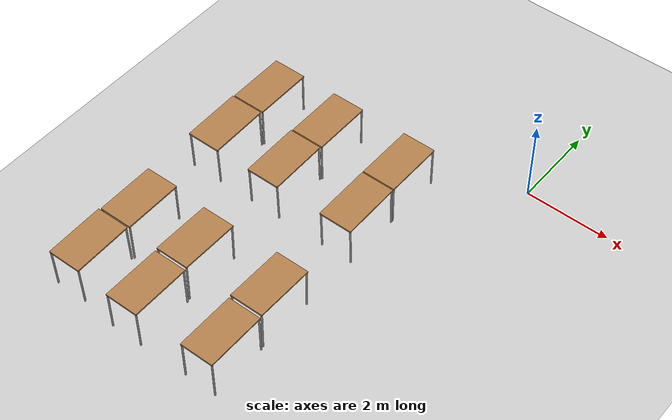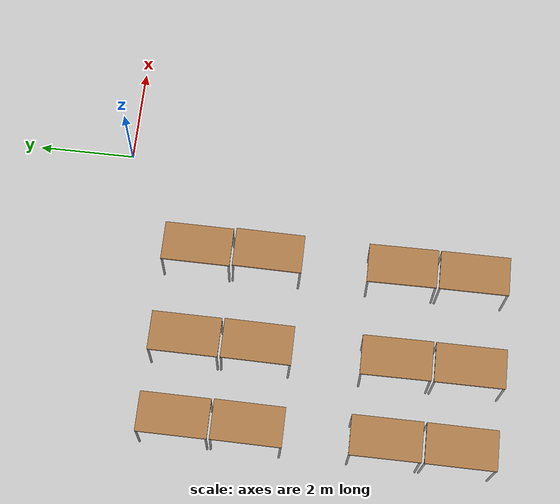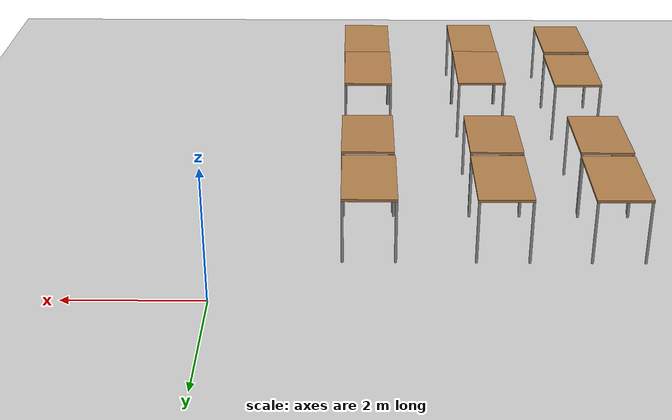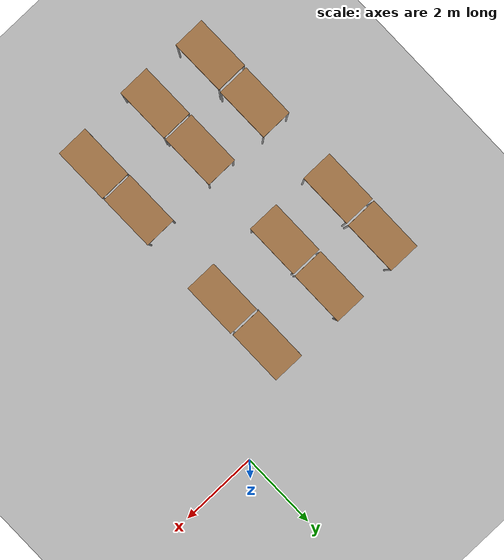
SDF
<sdf version="1.6">
 <world name="default">
  <model name="ground_plane">
   <static>1</static>
   <link name="link">
    <collision name="collision">
     <geometry><plane><normal>0 0 1</normal><size>100 100</size></plane></geometry>
     <surface><friction><ode><mu>100</mu><mu2>50</mu2></ode></friction></surface>
    </collision>
    <visual name="visual">
     <cast_shadows>0</cast_shadows>
     <geometry><plane><normal>0 0 1</normal><size>100 100</size></plane></geometry>
     <material>
      <script><uri>file://media/materials/scripts/gazebo.material</uri><name>Gazebo/Grey</name></script>
     </material>
    </visual>
   </link>
  </model>
  <model name="table_1">
   <static>0</static>
   <link name="link">
    <collision name="surface">
     <pose>0 0 1 0 -0 0</pose>
     <geometry><box><size>1.5 0.8 0.03</size></box></geometry>
     <surface><friction><ode><mu>0.6</mu><mu2>0.6</mu2></ode></friction></surface>
    </collision>
    <visual name="visual1">
     <pose>0 0 1 0 -0 0</pose>
     <geometry><box><size>1.4 0.8 0.04</size></box></geometry>
     <material>
      <script><uri>file://media/materials/scripts/gazebo.material</uri><name>Gazebo/Wood</name></script>
     </material>
    </visual>
    <collision name="front_left_leg">
     <pose>0.68 0.38 0.5 0 -0 0</pose>
     <geometry><cylinder><radius>0.02</radius><length>1</length></cylinder></geometry>
    </collision>
    <visual name="front_left_leg">
     <pose>0.68 0.38 0.5 0 -0 0</pose>
     <geometry><cylinder><radius>0.02</radius><length>1</length></cylinder></geometry>
     <material>
      <script><uri>file://media/materials/scripts/gazebo.material</uri><name>Gazebo/Grey</name></script>
     </material>
    </visual>
    <collision name="front_right_leg">
     <pose>0.68 -0.38 0.5 0 -0 0</pose>
     <geometry><cylinder><radius>0.02</radius><length>1</length></cylinder></geometry>
    </collision>
    <visual name="front_right_leg">
     <pose>0.68 -0.38 0.5 0 -0 0</pose>
     <geometry><cylinder><radius>0.02</radius><length>1</length></cylinder></geometry>
     <material>
      <script><uri>file://media/materials/scripts/gazebo.material</uri><name>Gazebo/Grey</name></script>
     </material>
    </visual>
    <collision name="back_right_leg">
     <pose>-0.68 -0.38 0.5 0 -0 0</pose>
     <geometry><cylinder><radius>0.02</radius><length>1</length></cylinder></geometry>
    </collision>
    <visual name="back_right_leg">
     <pose>-0.68 -0.38 0.5 0 -0 0</pose>
     <geometry><cylinder><radius>0.02</radius><length>1</length></cylinder></geometry>
     <material>
      <script><uri>file://media/materials/scripts/gazebo.material</uri><name>Gazebo/Grey</name></script>
     </material>
    </visual>
    <collision name="back_left_leg">
     <pose>-0.68 0.38 0.5 0 -0 0</pose>
     <geometry><cylinder><radius>0.02</radius><length>1</length></cylinder></geometry>
    </collision>
    <visual name="back_left_leg">
     <pose>-0.68 0.38 0.5 0 -0 0</pose>
     <geometry><cylinder><radius>0.02</radius><length>1</length></cylinder></geometry>
     <material>
      <script><uri>file://media/materials/scripts/gazebo.material</uri><name>Gazebo/Grey</name></script>
     </material>
    </visual>
    <inertial>
     <inertia><ixx>1</ixx><ixy>0</ixy><ixz>0</ixz><iyy>1</iyy><iyz>0</iyz><izz>1</izz></inertia>
     <mass>1</mass>
    </inertial>
   </link>
   <pose>-2.18294 -1.73071 0 0 0 -1.5708</pose>
  </model>
  <model name="table_1_clone">
   <static>0</static>
   <link name="link">
    <collision name="surface">
     <pose>0 0 1 0 -0 0</pose>
     <geometry><box><size>1.5 0.8 0.03</size></box></geometry>
     <surface><friction><ode><mu>0.6</mu><mu2>0.6</mu2></ode></friction></surface>
    </collision>
    <visual name="visual1">
     <pose>0 0 1 0 -0 0</pose>
     <geometry><box><size>1.4 0.8 0.04</size></box></geometry>
     <material>
      <script><uri>file://media/materials/scripts/gazebo.material</uri><name>Gazebo/Wood</name></script>
     </material>
    </visual>
    <collision name="front_left_leg">
     <pose>0.68 0.38 0.5 0 -0 0</pose>
     <geometry><cylinder><radius>0.02</radius><length>1</length></cylinder></geometry>
    </collision>
    <visual name="front_left_leg">
     <pose>0.68 0.38 0.5 0 -0 0</pose>
     <geometry><cylinder><radius>0.02</radius><length>1</length></cylinder></geometry>
     <material>
      <script><uri>file://media/materials/scripts/gazebo.material</uri><name>Gazebo/Grey</name></script>
     </material>
    </visual>
    <collision name="front_right_leg">
     <pose>0.68 -0.38 0.5 0 -0 0</pose>
     <geometry><cylinder><radius>0.02</radius><length>1</length></cylinder></geometry>
    </collision>
    <visual name="front_right_leg">
     <pose>0.68 -0.38 0.5 0 -0 0</pose>
     <geometry><cylinder><radius>0.02</radius><length>1</length></cylinder></geometry>
     <material>
      <script><uri>file://media/materials/scripts/gazebo.material</uri><name>Gazebo/Grey</name></script>
     </material>
    </visual>
    <collision name="back_right_leg">
     <pose>-0.68 -0.38 0.5 0 -0 0</pose>
     <geometry><cylinder><radius>0.02</radius><length>1</length></cylinder></geometry>
    </collision>
    <visual name="back_right_leg">
     <pose>-0.68 -0.38 0.5 0 -0 0</pose>
     <geometry><cylinder><radius>0.02</radius><length>1</length></cylinder></geometry>
     <material>
      <script><uri>file://media/materials/scripts/gazebo.material</uri><name>Gazebo/Grey</name></script>
     </material>
    </visual>
    <collision name="back_left_leg">
     <pose>-0.68 0.38 0.5 0 -0 0</pose>
     <geometry><cylinder><radius>0.02</radius><length>1</length></cylinder></geometry>
    </collision>
    <visual name="back_left_leg">
     <pose>-0.68 0.38 0.5 0 -0 0</pose>
     <geometry><cylinder><radius>0.02</radius><length>1</length></cylinder></geometry>
     <material>
      <script><uri>file://media/materials/scripts/gazebo.material</uri><name>Gazebo/Grey</name></script>
     </material>
    </visual>
    <inertial>
     <inertia><ixx>1</ixx><ixy>0</ixy><ixz>0</ixz><iyy>1</iyy><iyz>0</iyz><izz>1</izz></inertia>
     <mass>1</mass>
    </inertial>
   </link>
   <pose>-4.09308 -1.73071 -1e-06 0 -1e-06 -1.5708</pose>
  </model>
  <model name="table_1_clone_0">
   <static>0</static>
   <link name="link">
    <collision name="surface">
     <pose>0 0 1 0 -0 0</pose>
     <geometry><box><size>1.5 0.8 0.03</size></box></geometry>
     <surface><friction><ode><mu>0.6</mu><mu2>0.6</mu2></ode></friction></surface>
    </collision>
    <visual name="visual1">
     <pose>0 0 1 0 -0 0</pose>
     <geometry><box><size>1.4 0.8 0.04</size></box></geometry>
     <material>
      <script><uri>file://media/materials/scripts/gazebo.material</uri><name>Gazebo/Wood</name></script>
     </material>
    </visual>
    <collision name="front_left_leg">
     <pose>0.68 0.38 0.5 0 -0 0</pose>
     <geometry><cylinder><radius>0.02</radius><length>1</length></cylinder></geometry>
    </collision>
    <visual name="front_left_leg">
     <pose>0.68 0.38 0.5 0 -0 0</pose>
     <geometry><cylinder><radius>0.02</radius><length>1</length></cylinder></geometry>
     <material>
      <script><uri>file://media/materials/scripts/gazebo.material</uri><name>Gazebo/Grey</name></script>
     </material>
    </visual>
    <collision name="front_right_leg">
     <pose>0.68 -0.38 0.5 0 -0 0</pose>
     <geometry><cylinder><radius>0.02</radius><length>1</length></cylinder></geometry>
    </collision>
    <visual name="front_right_leg">
     <pose>0.68 -0.38 0.5 0 -0 0</pose>
     <geometry><cylinder><radius>0.02</radius><length>1</length></cylinder></geometry>
     <material>
      <script><uri>file://media/materials/scripts/gazebo.material</uri><name>Gazebo/Grey</name></script>
     </material>
    </visual>
    <collision name="back_right_leg">
     <pose>-0.68 -0.38 0.5 0 -0 0</pose>
     <geometry><cylinder><radius>0.02</radius><length>1</length></cylinder></geometry>
    </collision>
    <visual name="back_right_leg">
     <pose>-0.68 -0.38 0.5 0 -0 0</pose>
     <geometry><cylinder><radius>0.02</radius><length>1</length></cylinder></geometry>
     <material>
      <script><uri>file://media/materials/scripts/gazebo.material</uri><name>Gazebo/Grey</name></script>
     </material>
    </visual>
    <collision name="back_left_leg">
     <pose>-0.68 0.38 0.5 0 -0 0</pose>
     <geometry><cylinder><radius>0.02</radius><length>1</length></cylinder></geometry>
    </collision>
    <visual name="back_left_leg">
     <pose>-0.68 0.38 0.5 0 -0 0</pose>
     <geometry><cylinder><radius>0.02</radius><length>1</length></cylinder></geometry>
     <material>
      <script><uri>file://media/materials/scripts/gazebo.material</uri><name>Gazebo/Grey</name></script>
     </material>
    </visual>
    <inertial>
     <inertia><ixx>1</ixx><ixy>0</ixy><ixz>0</ixz><iyy>1</iyy><iyz>0</iyz><izz>1</izz></inertia>
     <mass>1</mass>
    </inertial>
   </link>
   <pose>-5.73955 -1.7307 0 2e-06 -1e-06 -1.5708</pose>
  </model>
  <model name="table_1_clone_1">
   <static>0</static>
   <link name="link">
    <collision name="surface">
     <pose>0 0 1 0 -0 0</pose>
     <geometry><box><size>1.5 0.8 0.03</size></box></geometry>
     <surface><friction><ode><mu>0.6</mu><mu2>0.6</mu2></ode></friction></surface>
    </collision>
    <visual name="visual1">
     <pose>0 0 1 0 -0 0</pose>
     <geometry><box><size>1.4 0.8 0.04</size></box></geometry>
     <material>
      <script><uri>file://media/materials/scripts/gazebo.material</uri><name>Gazebo/Wood</name></script>
     </material>
    </visual>
    <collision name="front_left_leg">
     <pose>0.68 0.38 0.5 0 -0 0</pose>
     <geometry><cylinder><radius>0.02</radius><length>1</length></cylinder></geometry>
    </collision>
    <visual name="front_left_leg">
     <pose>0.68 0.38 0.5 0 -0 0</pose>
     <geometry><cylinder><radius>0.02</radius><length>1</length></cylinder></geometry>
     <material>
      <script><uri>file://media/materials/scripts/gazebo.material</uri><name>Gazebo/Grey</name></script>
     </material>
    </visual>
    <collision name="front_right_leg">
     <pose>0.68 -0.38 0.5 0 -0 0</pose>
     <geometry><cylinder><radius>0.02</radius><length>1</length></cylinder></geometry>
    </collision>
    <visual name="front_right_leg">
     <pose>0.68 -0.38 0.5 0 -0 0</pose>
     <geometry><cylinder><radius>0.02</radius><length>1</length></cylinder></geometry>
     <material>
      <script><uri>file://media/materials/scripts/gazebo.material</uri><name>Gazebo/Grey</name></script>
     </material>
    </visual>
    <collision name="back_right_leg">
     <pose>-0.68 -0.38 0.5 0 -0 0</pose>
     <geometry><cylinder><radius>0.02</radius><length>1</length></cylinder></geometry>
    </collision>
    <visual name="back_right_leg">
     <pose>-0.68 -0.38 0.5 0 -0 0</pose>
     <geometry><cylinder><radius>0.02</radius><length>1</length></cylinder></geometry>
     <material>
      <script><uri>file://media/materials/scripts/gazebo.material</uri><name>Gazebo/Grey</name></script>
     </material>
    </visual>
    <collision name="back_left_leg">
     <pose>-0.68 0.38 0.5 0 -0 0</pose>
     <geometry><cylinder><radius>0.02</radius><length>1</length></cylinder></geometry>
    </collision>
    <visual name="back_left_leg">
     <pose>-0.68 0.38 0.5 0 -0 0</pose>
     <geometry><cylinder><radius>0.02</radius><length>1</length></cylinder></geometry>
     <material>
      <script><uri>file://media/materials/scripts/gazebo.material</uri><name>Gazebo/Grey</name></script>
     </material>
    </visual>
    <inertial>
     <inertia><ixx>1</ixx><ixy>0</ixy><ixz>0</ixz><iyy>1</iyy><iyz>0</iyz><izz>1</izz></inertia>
     <mass>1</mass>
    </inertial>
   </link>
   <pose>-2.16807 -3.15994 0.015106 -5e-06 0.021584 -1.57079</pose>
  </model>
  <model name="table_1_clone_2">
   <static>0</static>
   <link name="link">
    <collision name="surface">
     <pose>0 0 1 0 -0 0</pose>
     <geometry><box><size>1.5 0.8 0.03</size></box></geometry>
     <surface><friction><ode><mu>0.6</mu><mu2>0.6</mu2></ode></friction></surface>
    </collision>
    <visual name="visual1">
     <pose>0 0 1 0 -0 0</pose>
     <geometry><box><size>1.4 0.8 0.04</size></box></geometry>
     <material>
      <script><uri>file://media/materials/scripts/gazebo.material</uri><name>Gazebo/Wood</name></script>
     </material>
    </visual>
    <collision name="front_left_leg">
     <pose>0.68 0.38 0.5 0 -0 0</pose>
     <geometry><cylinder><radius>0.02</radius><length>1</length></cylinder></geometry>
    </collision>
    <visual name="front_left_leg">
     <pose>0.68 0.38 0.5 0 -0 0</pose>
     <geometry><cylinder><radius>0.02</radius><length>1</length></cylinder></geometry>
     <material>
      <script><uri>file://media/materials/scripts/gazebo.material</uri><name>Gazebo/Grey</name></script>
     </material>
    </visual>
    <collision name="front_right_leg">
     <pose>0.68 -0.38 0.5 0 -0 0</pose>
     <geometry><cylinder><radius>0.02</radius><length>1</length></cylinder></geometry>
    </collision>
    <visual name="front_right_leg">
     <pose>0.68 -0.38 0.5 0 -0 0</pose>
     <geometry><cylinder><radius>0.02</radius><length>1</length></cylinder></geometry>
     <material>
      <script><uri>file://media/materials/scripts/gazebo.material</uri><name>Gazebo/Grey</name></script>
     </material>
    </visual>
    <collision name="back_right_leg">
     <pose>-0.68 -0.38 0.5 0 -0 0</pose>
     <geometry><cylinder><radius>0.02</radius><length>1</length></cylinder></geometry>
    </collision>
    <visual name="back_right_leg">
     <pose>-0.68 -0.38 0.5 0 -0 0</pose>
     <geometry><cylinder><radius>0.02</radius><length>1</length></cylinder></geometry>
     <material>
      <script><uri>file://media/materials/scripts/gazebo.material</uri><name>Gazebo/Grey</name></script>
     </material>
    </visual>
    <collision name="back_left_leg">
     <pose>-0.68 0.38 0.5 0 -0 0</pose>
     <geometry><cylinder><radius>0.02</radius><length>1</length></cylinder></geometry>
    </collision>
    <visual name="back_left_leg">
     <pose>-0.68 0.38 0.5 0 -0 0</pose>
     <geometry><cylinder><radius>0.02</radius><length>1</length></cylinder></geometry>
     <material>
      <script><uri>file://media/materials/scripts/gazebo.material</uri><name>Gazebo/Grey</name></script>
     </material>
    </visual>
    <inertial>
     <inertia><ixx>1</ixx><ixy>0</ixy><ixz>0</ixz><iyy>1</iyy><iyz>0</iyz><izz>1</izz></inertia>
     <mass>1</mass>
    </inertial>
   </link>
   <pose>-4.09589 -3.15993 0.015108 0 0.021584 -1.5708</pose>
  </model>
  <model name="table_1_clone_3">
   <static>0</static>
   <link name="link">
    <collision name="surface">
     <pose>0 0 1 0 -0 0</pose>
     <geometry><box><size>1.5 0.8 0.03</size></box></geometry>
     <surface><friction><ode><mu>0.6</mu><mu2>0.6</mu2></ode></friction></surface>
    </collision>
    <visual name="visual1">
     <pose>0 0 1 0 -0 0</pose>
     <geometry><box><size>1.4 0.8 0.04</size></box></geometry>
     <material>
      <script><uri>file://media/materials/scripts/gazebo.material</uri><name>Gazebo/Wood</name></script>
     </material>
    </visual>
    <collision name="front_left_leg">
     <pose>0.68 0.38 0.5 0 -0 0</pose>
     <geometry><cylinder><radius>0.02</radius><length>1</length></cylinder></geometry>
    </collision>
    <visual name="front_left_leg">
     <pose>0.68 0.38 0.5 0 -0 0</pose>
     <geometry><cylinder><radius>0.02</radius><length>1</length></cylinder></geometry>
     <material>
      <script><uri>file://media/materials/scripts/gazebo.material</uri><name>Gazebo/Grey</name></script>
     </material>
    </visual>
    <collision name="front_right_leg">
     <pose>0.68 -0.38 0.5 0 -0 0</pose>
     <geometry><cylinder><radius>0.02</radius><length>1</length></cylinder></geometry>
    </collision>
    <visual name="front_right_leg">
     <pose>0.68 -0.38 0.5 0 -0 0</pose>
     <geometry><cylinder><radius>0.02</radius><length>1</length></cylinder></geometry>
     <material>
      <script><uri>file://media/materials/scripts/gazebo.material</uri><name>Gazebo/Grey</name></script>
     </material>
    </visual>
    <collision name="back_right_leg">
     <pose>-0.68 -0.38 0.5 0 -0 0</pose>
     <geometry><cylinder><radius>0.02</radius><length>1</length></cylinder></geometry>
    </collision>
    <visual name="back_right_leg">
     <pose>-0.68 -0.38 0.5 0 -0 0</pose>
     <geometry><cylinder><radius>0.02</radius><length>1</length></cylinder></geometry>
     <material>
      <script><uri>file://media/materials/scripts/gazebo.material</uri><name>Gazebo/Grey</name></script>
     </material>
    </visual>
    <collision name="back_left_leg">
     <pose>-0.68 0.38 0.5 0 -0 0</pose>
     <geometry><cylinder><radius>0.02</radius><length>1</length></cylinder></geometry>
    </collision>
    <visual name="back_left_leg">
     <pose>-0.68 0.38 0.5 0 -0 0</pose>
     <geometry><cylinder><radius>0.02</radius><length>1</length></cylinder></geometry>
     <material>
      <script><uri>file://media/materials/scripts/gazebo.material</uri><name>Gazebo/Grey</name></script>
     </material>
    </visual>
    <inertial>
     <inertia><ixx>1</ixx><ixy>0</ixy><ixz>0</ixz><iyy>1</iyy><iyz>0</iyz><izz>1</izz></inertia>
     <mass>1</mass>
    </inertial>
   </link>
   <pose>-5.73992 -3.15993 0.015106 2e-06 0.02158 -1.5708</pose>
  </model>
  <model name="table_1_clone_4">
   <static>0</static>
   <link name="link">
    <collision name="surface">
     <pose>0 0 1 0 -0 0</pose>
     <geometry><box><size>1.5 0.8 0.03</size></box></geometry>
     <surface><friction><ode><mu>0.6</mu><mu2>0.6</mu2></ode></friction></surface>
    </collision>
    <visual name="visual1">
     <pose>0 0 1 0 -0 0</pose>
     <geometry><box><size>1.4 0.8 0.04</size></box></geometry>
     <material>
      <script><uri>file://media/materials/scripts/gazebo.material</uri><name>Gazebo/Wood</name></script>
     </material>
    </visual>
    <collision name="front_left_leg">
     <pose>0.68 0.38 0.5 0 -0 0</pose>
     <geometry><cylinder><radius>0.02</radius><length>1</length></cylinder></geometry>
    </collision>
    <visual name="front_left_leg">
     <pose>0.68 0.38 0.5 0 -0 0</pose>
     <geometry><cylinder><radius>0.02</radius><length>1</length></cylinder></geometry>
     <material>
      <script><uri>file://media/materials/scripts/gazebo.material</uri><name>Gazebo/Grey</name></script>
     </material>
    </visual>
    <collision name="front_right_leg">
     <pose>0.68 -0.38 0.5 0 -0 0</pose>
     <geometry><cylinder><radius>0.02</radius><length>1</length></cylinder></geometry>
    </collision>
    <visual name="front_right_leg">
     <pose>0.68 -0.38 0.5 0 -0 0</pose>
     <geometry><cylinder><radius>0.02</radius><length>1</length></cylinder></geometry>
     <material>
      <script><uri>file://media/materials/scripts/gazebo.material</uri><name>Gazebo/Grey</name></script>
     </material>
    </visual>
    <collision name="back_right_leg">
     <pose>-0.68 -0.38 0.5 0 -0 0</pose>
     <geometry><cylinder><radius>0.02</radius><length>1</length></cylinder></geometry>
    </collision>
    <visual name="back_right_leg">
     <pose>-0.68 -0.38 0.5 0 -0 0</pose>
     <geometry><cylinder><radius>0.02</radius><length>1</length></cylinder></geometry>
     <material>
      <script><uri>file://media/materials/scripts/gazebo.material</uri><name>Gazebo/Grey</name></script>
     </material>
    </visual>
    <collision name="back_left_leg">
     <pose>-0.68 0.38 0.5 0 -0 0</pose>
     <geometry><cylinder><radius>0.02</radius><length>1</length></cylinder></geometry>
    </collision>
    <visual name="back_left_leg">
     <pose>-0.68 0.38 0.5 0 -0 0</pose>
     <geometry><cylinder><radius>0.02</radius><length>1</length></cylinder></geometry>
     <material>
      <script><uri>file://media/materials/scripts/gazebo.material</uri><name>Gazebo/Grey</name></script>
     </material>
    </visual>
    <inertial>
     <inertia><ixx>1</ixx><ixy>0</ixy><ixz>0</ixz><iyy>1</iyy><iyz>0</iyz><izz>1</izz></inertia>
     <mass>1</mass>
    </inertial>
   </link>
   <pose>-2.16591 -7.34843 0 1e-06 -0 -1.56596</pose>
  </model>
  <model name="table_1_clone_5">
   <static>0</static>
   <link name="link">
    <collision name="surface">
     <pose>0 0 1 0 -0 0</pose>
     <geometry><box><size>1.5 0.8 0.03</size></box></geometry>
     <surface><friction><ode><mu>0.6</mu><mu2>0.6</mu2></ode></friction></surface>
    </collision>
    <visual name="visual1">
     <pose>0 0 1 0 -0 0</pose>
     <geometry><box><size>1.4 0.8 0.04</size></box></geometry>
     <material>
      <script><uri>file://media/materials/scripts/gazebo.material</uri><name>Gazebo/Wood</name></script>
     </material>
    </visual>
    <collision name="front_left_leg">
     <pose>0.68 0.38 0.5 0 -0 0</pose>
     <geometry><cylinder><radius>0.02</radius><length>1</length></cylinder></geometry>
    </collision>
    <visual name="front_left_leg">
     <pose>0.68 0.38 0.5 0 -0 0</pose>
     <geometry><cylinder><radius>0.02</radius><length>1</length></cylinder></geometry>
     <material>
      <script><uri>file://media/materials/scripts/gazebo.material</uri><name>Gazebo/Grey</name></script>
     </material>
    </visual>
    <collision name="front_right_leg">
     <pose>0.68 -0.38 0.5 0 -0 0</pose>
     <geometry><cylinder><radius>0.02</radius><length>1</length></cylinder></geometry>
    </collision>
    <visual name="front_right_leg">
     <pose>0.68 -0.38 0.5 0 -0 0</pose>
     <geometry><cylinder><radius>0.02</radius><length>1</length></cylinder></geometry>
     <material>
      <script><uri>file://media/materials/scripts/gazebo.material</uri><name>Gazebo/Grey</name></script>
     </material>
    </visual>
    <collision name="back_right_leg">
     <pose>-0.68 -0.38 0.5 0 -0 0</pose>
     <geometry><cylinder><radius>0.02</radius><length>1</length></cylinder></geometry>
    </collision>
    <visual name="back_right_leg">
     <pose>-0.68 -0.38 0.5 0 -0 0</pose>
     <geometry><cylinder><radius>0.02</radius><length>1</length></cylinder></geometry>
     <material>
      <script><uri>file://media/materials/scripts/gazebo.material</uri><name>Gazebo/Grey</name></script>
     </material>
    </visual>
    <collision name="back_left_leg">
     <pose>-0.68 0.38 0.5 0 -0 0</pose>
     <geometry><cylinder><radius>0.02</radius><length>1</length></cylinder></geometry>
    </collision>
    <visual name="back_left_leg">
     <pose>-0.68 0.38 0.5 0 -0 0</pose>
     <geometry><cylinder><radius>0.02</radius><length>1</length></cylinder></geometry>
     <material>
      <script><uri>file://media/materials/scripts/gazebo.material</uri><name>Gazebo/Grey</name></script>
     </material>
    </visual>
    <inertial>
     <inertia><ixx>1</ixx><ixy>0</ixy><ixz>0</ixz><iyy>1</iyy><iyz>0</iyz><izz>1</izz></inertia>
     <mass>1</mass>
    </inertial>
   </link>
   <pose>-2.18131 -5.91926 0.015108 -1e-06 -0.021584 -1.56596</pose>
  </model>
  <model name="table_1_clone_6">
   <static>0</static>
   <link name="link">
    <collision name="surface">
     <pose>0 0 1 0 -0 0</pose>
     <geometry><box><size>1.5 0.8 0.03</size></box></geometry>
     <surface><friction><ode><mu>0.6</mu><mu2>0.6</mu2></ode></friction></surface>
    </collision>
    <visual name="visual1">
     <pose>0 0 1 0 -0 0</pose>
     <geometry><box><size>1.4 0.8 0.04</size></box></geometry>
     <material>
      <script><uri>file://media/materials/scripts/gazebo.material</uri><name>Gazebo/Wood</name></script>
     </material>
    </visual>
    <collision name="front_left_leg">
     <pose>0.68 0.38 0.5 0 -0 0</pose>
     <geometry><cylinder><radius>0.02</radius><length>1</length></cylinder></geometry>
    </collision>
    <visual name="front_left_leg">
     <pose>0.68 0.38 0.5 0 -0 0</pose>
     <geometry><cylinder><radius>0.02</radius><length>1</length></cylinder></geometry>
     <material>
      <script><uri>file://media/materials/scripts/gazebo.material</uri><name>Gazebo/Grey</name></script>
     </material>
    </visual>
    <collision name="front_right_leg">
     <pose>0.68 -0.38 0.5 0 -0 0</pose>
     <geometry><cylinder><radius>0.02</radius><length>1</length></cylinder></geometry>
    </collision>
    <visual name="front_right_leg">
     <pose>0.68 -0.38 0.5 0 -0 0</pose>
     <geometry><cylinder><radius>0.02</radius><length>1</length></cylinder></geometry>
     <material>
      <script><uri>file://media/materials/scripts/gazebo.material</uri><name>Gazebo/Grey</name></script>
     </material>
    </visual>
    <collision name="back_right_leg">
     <pose>-0.68 -0.38 0.5 0 -0 0</pose>
     <geometry><cylinder><radius>0.02</radius><length>1</length></cylinder></geometry>
    </collision>
    <visual name="back_right_leg">
     <pose>-0.68 -0.38 0.5 0 -0 0</pose>
     <geometry><cylinder><radius>0.02</radius><length>1</length></cylinder></geometry>
     <material>
      <script><uri>file://media/materials/scripts/gazebo.material</uri><name>Gazebo/Grey</name></script>
     </material>
    </visual>
    <collision name="back_left_leg">
     <pose>-0.68 0.38 0.5 0 -0 0</pose>
     <geometry><cylinder><radius>0.02</radius><length>1</length></cylinder></geometry>
    </collision>
    <visual name="back_left_leg">
     <pose>-0.68 0.38 0.5 0 -0 0</pose>
     <geometry><cylinder><radius>0.02</radius><length>1</length></cylinder></geometry>
     <material>
      <script><uri>file://media/materials/scripts/gazebo.material</uri><name>Gazebo/Grey</name></script>
     </material>
    </visual>
    <inertial>
     <inertia><ixx>1</ixx><ixy>0</ixy><ixz>0</ixz><iyy>1</iyy><iyz>0</iyz><izz>1</izz></inertia>
     <mass>1</mass>
    </inertial>
   </link>
   <pose>-4.09179 -7.38156 0 0 0 -1.56601</pose>
  </model>
  <model name="table_1_clone_6_clone">
   <static>0</static>
   <link name="link">
    <collision name="surface">
     <pose>0 0 1 0 -0 0</pose>
     <geometry><box><size>1.5 0.8 0.03</size></box></geometry>
     <surface><friction><ode><mu>0.6</mu><mu2>0.6</mu2></ode></friction></surface>
    </collision>
    <visual name="visual1">
     <pose>0 0 1 0 -0 0</pose>
     <geometry><box><size>1.4 0.8 0.04</size></box></geometry>
     <material>
      <script><uri>file://media/materials/scripts/gazebo.material</uri><name>Gazebo/Wood</name></script>
     </material>
    </visual>
    <collision name="front_left_leg">
     <pose>0.68 0.38 0.5 0 -0 0</pose>
     <geometry><cylinder><radius>0.02</radius><length>1</length></cylinder></geometry>
    </collision>
    <visual name="front_left_leg">
     <pose>0.68 0.38 0.5 0 -0 0</pose>
     <geometry><cylinder><radius>0.02</radius><length>1</length></cylinder></geometry>
     <material>
      <script><uri>file://media/materials/scripts/gazebo.material</uri><name>Gazebo/Grey</name></script>
     </material>
    </visual>
    <collision name="front_right_leg">
     <pose>0.68 -0.38 0.5 0 -0 0</pose>
     <geometry><cylinder><radius>0.02</radius><length>1</length></cylinder></geometry>
    </collision>
    <visual name="front_right_leg">
     <pose>0.68 -0.38 0.5 0 -0 0</pose>
     <geometry><cylinder><radius>0.02</radius><length>1</length></cylinder></geometry>
     <material>
      <script><uri>file://media/materials/scripts/gazebo.material</uri><name>Gazebo/Grey</name></script>
     </material>
    </visual>
    <collision name="back_right_leg">
     <pose>-0.68 -0.38 0.5 0 -0 0</pose>
     <geometry><cylinder><radius>0.02</radius><length>1</length></cylinder></geometry>
    </collision>
    <visual name="back_right_leg">
     <pose>-0.68 -0.38 0.5 0 -0 0</pose>
     <geometry><cylinder><radius>0.02</radius><length>1</length></cylinder></geometry>
     <material>
      <script><uri>file://media/materials/scripts/gazebo.material</uri><name>Gazebo/Grey</name></script>
     </material>
    </visual>
    <collision name="back_left_leg">
     <pose>-0.68 0.38 0.5 0 -0 0</pose>
     <geometry><cylinder><radius>0.02</radius><length>1</length></cylinder></geometry>
    </collision>
    <visual name="back_left_leg">
     <pose>-0.68 0.38 0.5 0 -0 0</pose>
     <geometry><cylinder><radius>0.02</radius><length>1</length></cylinder></geometry>
     <material>
      <script><uri>file://media/materials/scripts/gazebo.material</uri><name>Gazebo/Grey</name></script>
     </material>
    </visual>
    <inertial>
     <inertia><ixx>1</ixx><ixy>0</ixy><ixz>0</ixz><iyy>1</iyy><iyz>0</iyz><izz>1</izz></inertia>
     <mass>1</mass>
    </inertial>
   </link>
   <pose>-4.10282 -5.95237 0.015108 0 -0.021584 -1.566</pose>
  </model>
  <model name="table_1_clone_6_clone_0">
   <static>0</static>
   <link name="link">
    <collision name="surface">
     <pose>0 0 1 0 -0 0</pose>
     <geometry><box><size>1.5 0.8 0.03</size></box></geometry>
     <surface><friction><ode><mu>0.6</mu><mu2>0.6</mu2></ode></friction></surface>
    </collision>
    <visual name="visual1">
     <pose>0 0 1 0 -0 0</pose>
     <geometry><box><size>1.4 0.8 0.04</size></box></geometry>
     <material>
      <script><uri>file://media/materials/scripts/gazebo.material</uri><name>Gazebo/Wood</name></script>
     </material>
    </visual>
    <collision name="front_left_leg">
     <pose>0.68 0.38 0.5 0 -0 0</pose>
     <geometry><cylinder><radius>0.02</radius><length>1</length></cylinder></geometry>
    </collision>
    <visual name="front_left_leg">
     <pose>0.68 0.38 0.5 0 -0 0</pose>
     <geometry><cylinder><radius>0.02</radius><length>1</length></cylinder></geometry>
     <material>
      <script><uri>file://media/materials/scripts/gazebo.material</uri><name>Gazebo/Grey</name></script>
     </material>
    </visual>
    <collision name="front_right_leg">
     <pose>0.68 -0.38 0.5 0 -0 0</pose>
     <geometry><cylinder><radius>0.02</radius><length>1</length></cylinder></geometry>
    </collision>
    <visual name="front_right_leg">
     <pose>0.68 -0.38 0.5 0 -0 0</pose>
     <geometry><cylinder><radius>0.02</radius><length>1</length></cylinder></geometry>
     <material>
      <script><uri>file://media/materials/scripts/gazebo.material</uri><name>Gazebo/Grey</name></script>
     </material>
    </visual>
    <collision name="back_right_leg">
     <pose>-0.68 -0.38 0.5 0 -0 0</pose>
     <geometry><cylinder><radius>0.02</radius><length>1</length></cylinder></geometry>
    </collision>
    <visual name="back_right_leg">
     <pose>-0.68 -0.38 0.5 0 -0 0</pose>
     <geometry><cylinder><radius>0.02</radius><length>1</length></cylinder></geometry>
     <material>
      <script><uri>file://media/materials/scripts/gazebo.material</uri><name>Gazebo/Grey</name></script>
     </material>
    </visual>
    <collision name="back_left_leg">
     <pose>-0.68 0.38 0.5 0 -0 0</pose>
     <geometry><cylinder><radius>0.02</radius><length>1</length></cylinder></geometry>
    </collision>
    <visual name="back_left_leg">
     <pose>-0.68 0.38 0.5 0 -0 0</pose>
     <geometry><cylinder><radius>0.02</radius><length>1</length></cylinder></geometry>
     <material>
      <script><uri>file://media/materials/scripts/gazebo.material</uri><name>Gazebo/Grey</name></script>
     </material>
    </visual>
    <inertial>
     <inertia><ixx>1</ixx><ixy>0</ixy><ixz>0</ixz><iyy>1</iyy><iyz>0</iyz><izz>1</izz></inertia>
     <mass>1</mass>
    </inertial>
   </link>
   <pose>-5.72385 -7.28899 0.015103 1e-06 0.021577 -1.56624</pose>
  </model>
  <model name="table_1_clone_6_clone_1">
   <static>0</static>
   <link name="link">
    <collision name="surface">
     <pose>0 0 1 0 -0 0</pose>
     <geometry><box><size>1.5 0.8 0.03</size></box></geometry>
     <surface><friction><ode><mu>0.6</mu><mu2>0.6</mu2></ode></friction></surface>
    </collision>
    <visual name="visual1">
     <pose>0 0 1 0 -0 0</pose>
     <geometry><box><size>1.4 0.8 0.04</size></box></geometry>
     <material>
      <script><uri>file://media/materials/scripts/gazebo.material</uri><name>Gazebo/Wood</name></script>
     </material>
    </visual>
    <collision name="front_left_leg">
     <pose>0.68 0.38 0.5 0 -0 0</pose>
     <geometry><cylinder><radius>0.02</radius><length>1</length></cylinder></geometry>
    </collision>
    <visual name="front_left_leg">
     <pose>0.68 0.38 0.5 0 -0 0</pose>
     <geometry><cylinder><radius>0.02</radius><length>1</length></cylinder></geometry>
     <material>
      <script><uri>file://media/materials/scripts/gazebo.material</uri><name>Gazebo/Grey</name></script>
     </material>
    </visual>
    <collision name="front_right_leg">
     <pose>0.68 -0.38 0.5 0 -0 0</pose>
     <geometry><cylinder><radius>0.02</radius><length>1</length></cylinder></geometry>
    </collision>
    <visual name="front_right_leg">
     <pose>0.68 -0.38 0.5 0 -0 0</pose>
     <geometry><cylinder><radius>0.02</radius><length>1</length></cylinder></geometry>
     <material>
      <script><uri>file://media/materials/scripts/gazebo.material</uri><name>Gazebo/Grey</name></script>
     </material>
    </visual>
    <collision name="back_right_leg">
     <pose>-0.68 -0.38 0.5 0 -0 0</pose>
     <geometry><cylinder><radius>0.02</radius><length>1</length></cylinder></geometry>
    </collision>
    <visual name="back_right_leg">
     <pose>-0.68 -0.38 0.5 0 -0 0</pose>
     <geometry><cylinder><radius>0.02</radius><length>1</length></cylinder></geometry>
     <material>
      <script><uri>file://media/materials/scripts/gazebo.material</uri><name>Gazebo/Grey</name></script>
     </material>
    </visual>
    <collision name="back_left_leg">
     <pose>-0.68 0.38 0.5 0 -0 0</pose>
     <geometry><cylinder><radius>0.02</radius><length>1</length></cylinder></geometry>
    </collision>
    <visual name="back_left_leg">
     <pose>-0.68 0.38 0.5 0 -0 0</pose>
     <geometry><cylinder><radius>0.02</radius><length>1</length></cylinder></geometry>
     <material>
      <script><uri>file://media/materials/scripts/gazebo.material</uri><name>Gazebo/Grey</name></script>
     </material>
    </visual>
    <inertial>
     <inertia><ixx>1</ixx><ixy>0</ixy><ixz>0</ixz><iyy>1</iyy><iyz>0</iyz><izz>1</izz></inertia>
     <mass>1</mass>
    </inertial>
   </link>
   <pose>-5.72014 -5.85973 -9e-06 -2e-06 2e-06 -1.56624</pose>
  </model>
 </world>
</sdf>
